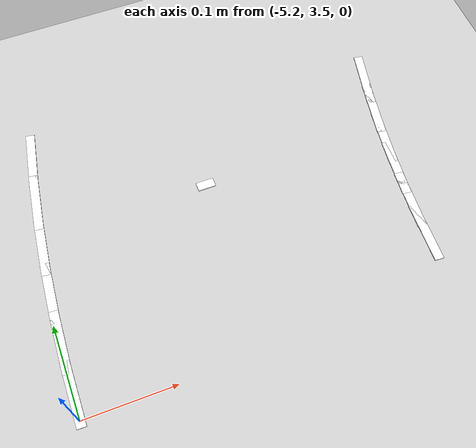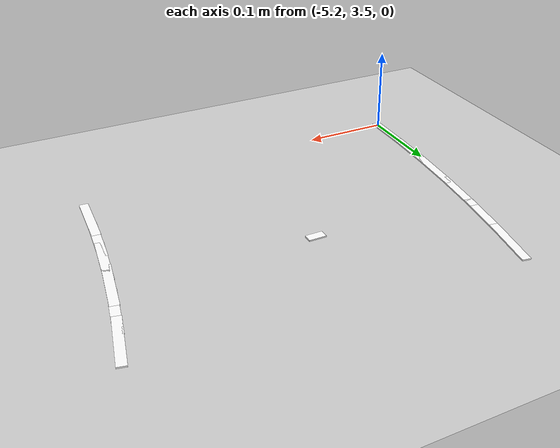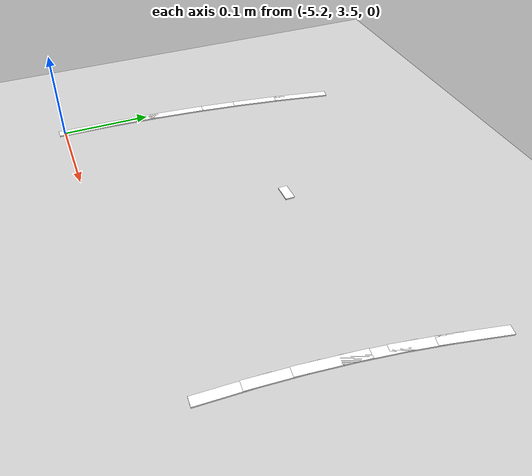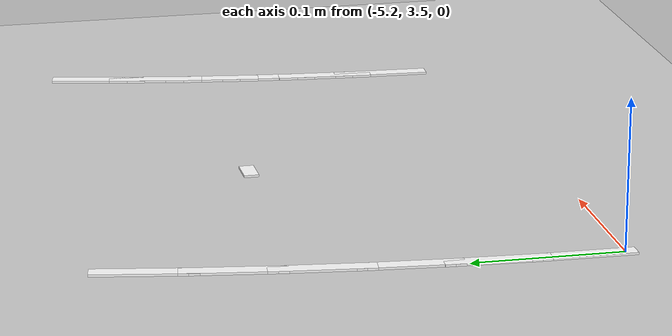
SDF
<sdf version="1.7">
 <world name="default">
  <model name="ground_plane">
   <static>1</static>
   <link name="link">
    <collision name="collision">
     <geometry><plane><normal>0 0 1</normal><size>100 100</size></plane></geometry>
     <surface>
      <contact><collide_bitmask>65535</collide_bitmask></contact>
      <friction><ode><mu>100</mu><mu2>50</mu2></ode></friction>
     </surface>
    </collision>
    <visual name="visual">
     <cast_shadows>0</cast_shadows>
     <geometry><plane><normal>0 0 1</normal><size>100 100</size></plane></geometry>
     <material>
      <script><uri>file://media/materials/scripts/gazebo.material</uri><name>Gazebo/Grey</name></script>
     </material>
    </visual>
   </link>
  </model>
  <model name="lane_line_left_292">
   <static>1</static>
   <link name="link">
    <pose>0 0 -0.004 0 -0 0</pose>
    <visual name="visual">
     <geometry><box><size>0.0681 0.01 0.01</size></box></geometry>
     <material><ambient>1 1 1 1</ambient><diffuse>1 1 1 1</diffuse></material>
    </visual>
    <collision name="collision"><geometry><box><size>0.0681 0.01 0.01</size></box></geometry></collision>
   </link>
   <pose>-4.77169 3.76889 0 0 0 -1.77917</pose>
  </model>
  <model name="lane_line_left_293">
   <static>1</static>
   <link name="link">
    <pose>0 0 -0.004 0 -0 0</pose>
    <visual name="visual">
     <geometry><box><size>0.0681 0.01 0.01</size></box></geometry>
     <material><ambient>1 1 1 1</ambient><diffuse>1 1 1 1</diffuse></material>
    </visual>
    <collision name="collision"><geometry><box><size>0.0681 0.01 0.01</size></box></geometry></collision>
   </link>
   <pose>-4.77966 3.72799 0 0 0 -1.74711</pose>
  </model>
  <model name="lane_line_right_293">
   <static>1</static>
   <link name="link">
    <pose>0 0 -0.004 0 -0 0</pose>
    <visual name="visual">
     <geometry><box><size>0.0681 0.01 0.01</size></box></geometry>
     <material><ambient>1 1 1 1</ambient><diffuse>1 1 1 1</diffuse></material>
    </visual>
    <collision name="collision"><geometry><box><size>0.0681 0.01 0.01</size></box></geometry></collision>
   </link>
   <pose>-5.17346 3.79815 0 0 0 -1.74711</pose>
  </model>
  <model name="lane_line_left_294">
   <static>1</static>
   <link name="link">
    <pose>0 0 -0.004 0 -0 0</pose>
    <visual name="visual">
     <geometry><box><size>0.0681 0.01 0.01</size></box></geometry>
     <material><ambient>1 1 1 1</ambient><diffuse>1 1 1 1</diffuse></material>
    </visual>
    <collision name="collision"><geometry><box><size>0.0681 0.01 0.01</size></box></geometry></collision>
   </link>
   <pose>-4.78631 3.68686 0 0 0 -1.71505</pose>
  </model>
  <model name="lane_line_right_294">
   <static>1</static>
   <link name="link">
    <pose>0 0 -0.004 0 -0 0</pose>
    <visual name="visual">
     <geometry><box><size>0.0681 0.01 0.01</size></box></geometry>
     <material><ambient>1 1 1 1</ambient><diffuse>1 1 1 1</diffuse></material>
    </visual>
    <collision name="collision"><geometry><box><size>0.0681 0.01 0.01</size></box></geometry></collision>
   </link>
   <pose>-5.18215 3.74436 0 0 0 -1.71505</pose>
  </model>
  <model name="lane_line_left_295">
   <static>1</static>
   <link name="link">
    <pose>0 0 -0.004 0 -0 0</pose>
    <visual name="visual">
     <geometry><box><size>0.0681 0.01 0.01</size></box></geometry>
     <material><ambient>1 1 1 1</ambient><diffuse>1 1 1 1</diffuse></material>
    </visual>
    <collision name="collision"><geometry><box><size>0.0681 0.01 0.01</size></box></geometry></collision>
   </link>
   <pose>-4.79163 3.64553 0 0 0 -1.683</pose>
  </model>
  <model name="lane_line_right_295">
   <static>1</static>
   <link name="link">
    <pose>0 0 -0.004 0 -0 0</pose>
    <visual name="visual">
     <geometry><box><size>0.0681 0.01 0.01</size></box></geometry>
     <material><ambient>1 1 1 1</ambient><diffuse>1 1 1 1</diffuse></material>
    </visual>
    <collision name="collision"><geometry><box><size>0.0681 0.01 0.01</size></box></geometry></collision>
   </link>
   <pose>-5.18912 3.69032 0 0 0 -1.683</pose>
  </model>
  <model name="lane_line_left_296">
   <static>1</static>
   <link name="link">
    <pose>0 0 -0.004 0 -0 0</pose>
    <visual name="visual">
     <geometry><box><size>0.0681 0.01 0.01</size></box></geometry>
     <material><ambient>1 1 1 1</ambient><diffuse>1 1 1 1</diffuse></material>
    </visual>
    <collision name="collision"><geometry><box><size>0.0681 0.01 0.01</size></box></geometry></collision>
   </link>
   <pose>-4.79564 3.60406 0 0 0 -1.65094</pose>
  </model>
  <model name="lane_line_right_296">
   <static>1</static>
   <link name="link">
    <pose>0 0 -0.004 0 -0 0</pose>
    <visual name="visual">
     <geometry><box><size>0.0681 0.01 0.01</size></box></geometry>
     <material><ambient>1 1 1 1</ambient><diffuse>1 1 1 1</diffuse></material>
    </visual>
    <collision name="collision"><geometry><box><size>0.0681 0.01 0.01</size></box></geometry></collision>
   </link>
   <pose>-5.19435 3.63608 0 0 0 -1.65094</pose>
  </model>
  <model name="lane_line_left_297">
   <static>1</static>
   <link name="link">
    <pose>0 0 -0.004 0 -0 0</pose>
    <visual name="visual">
     <geometry><box><size>0.0681 0.01 0.01</size></box></geometry>
     <material><ambient>1 1 1 1</ambient><diffuse>1 1 1 1</diffuse></material>
    </visual>
    <collision name="collision"><geometry><box><size>0.0681 0.01 0.01</size></box></geometry></collision>
   </link>
   <pose>-4.7983 3.56248 0 0 0 -1.61888</pose>
  </model>
  <model name="lane_line_right_297">
   <static>1</static>
   <link name="link">
    <pose>0 0 -0.004 0 -0 0</pose>
    <visual name="visual">
     <geometry><box><size>0.0681 0.01 0.01</size></box></geometry>
     <material><ambient>1 1 1 1</ambient><diffuse>1 1 1 1</diffuse></material>
    </visual>
    <collision name="collision"><geometry><box><size>0.0681 0.01 0.01</size></box></geometry></collision>
   </link>
   <pose>-5.19784 3.5817 0 0 0 -1.61888</pose>
  </model>
  <model name="lane_line_right_298">
   <static>1</static>
   <link name="link">
    <pose>0 0 -0.004 0 -0 0</pose>
    <visual name="visual">
     <geometry><box><size>0.0681 0.01 0.01</size></box></geometry>
     <material><ambient>1 1 1 1</ambient><diffuse>1 1 1 1</diffuse></material>
    </visual>
    <collision name="collision"><geometry><box><size>0.0681 0.01 0.01</size></box></geometry></collision>
   </link>
   <pose>-5.19959 3.52724 0 0 0 -1.58682</pose>
  </model>
  <model name="lane_line_left_299">
   <static>1</static>
   <link name="link">
    <pose>0 0 -0.004 0 -0 0</pose>
    <visual name="visual">
     <geometry><box><size>0.02 0.01 0.01</size></box></geometry>
     <material><ambient>1 1 1 1</ambient><diffuse>1 1 1 1</diffuse></material>
    </visual>
    <collision name="collision"><geometry><box><size>0.02 0.01 0.01</size></box></geometry></collision>
   </link>
   <pose>-5 3.7 0 0 -0 0</pose>
  </model>
 </world>
</sdf>
